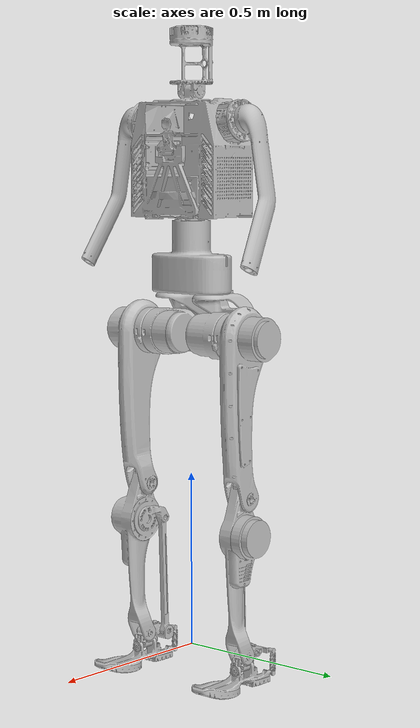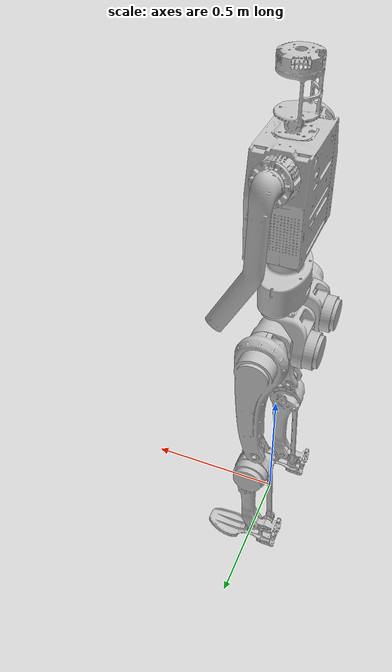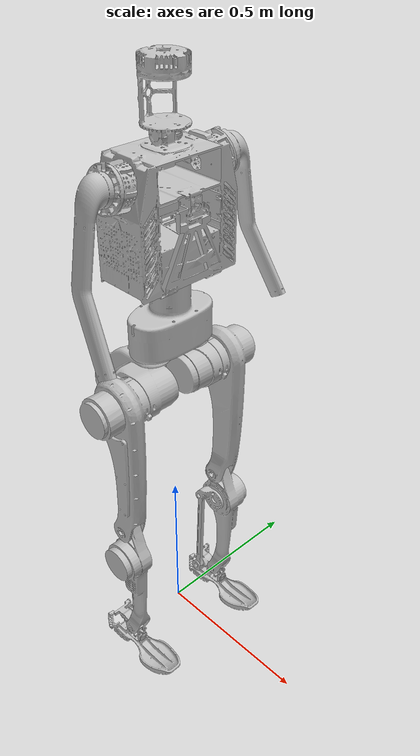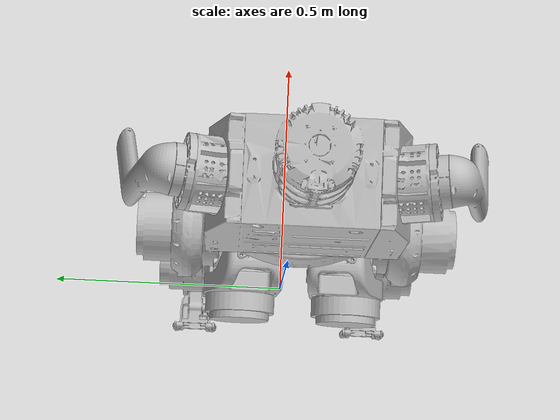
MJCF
<mujoco model="ultra_game_yaw">
  <compiler angle="radian" meshdir="../assets" eulerseq="zyx" autolimits="true"/>

  <default>
    <default class="ultra">
      <default class="visual">
        <geom group="2" type="mesh" density="0" material="body" contype="0" conaffinity="0"/>
      </default>
      <default class="collision">
        <geom group="3" rgba=".2 .6 .2 .3" type="cylinder" contype="1" conaffinity="1" condim="1"/>
        <default class="foot">
          <geom type="capsule" size="0.01" condim="3" friction="0.6 0.5 0.005" priority="1"/>
        </default>
      </default>
      <site group="5" rgba="1 0 0 1"/>
    </default>
  </default>

  <asset>
    <material name="body" rgba="0.752941 0.752941 0.752941 1"/>

    <mesh name="ankle_pitch_l_link" file="ankle_pitch_l_link.STL"/>
    <mesh name="ankle_pitch_r_link" file="ankle_pitch_r_link.STL"/>
    <mesh name="ankle_roll_l_link" file="ankle_roll_l_link.STL"/>
    <mesh name="ankle_roll_r_link" file="ankle_roll_r_link.STL"/>
    <mesh name="base_link" file="base_link.STL"/>
    <mesh name="hip_pitch_l_link" file="hip_pitch_l_link.STL"/>
    <mesh name="hip_pitch_r_link" file="hip_pitch_r_link.STL"/>
    <mesh name="hip_roll_l_link" file="hip_roll_l_link.STL"/>
    <mesh name="hip_roll_r_link" file="hip_roll_r_link.STL"/>
    <mesh name="hip_yaw_l_link" file="hip_yaw_l_link.STL"/>
    <mesh name="hip_yaw_r_link" file="hip_yaw_r_link.STL"/>
    <mesh name="knee_pitch_l_link" file="knee_pitch_l_link.STL"/>
    <mesh name="knee_pitch_r_link" file="knee_pitch_r_link.STL"/>
    <mesh name="shoulder_pitch_l_link" file="shoulder_pitch_l_link.STL"/>
    <mesh name="shoulder_pitch_r_link" file="shoulder_pitch_r_link.STL"/>
    <mesh name="waist_yaw_link" file="waist_yaw_link.STL"/>
  </asset>

  <worldbody>
    <body name="base_link" pos="0 0 1.23" childclass="ultra">
      <freejoint name="floating_base_joint"/>
      <site name="imu_in_base" size="0.01" pos="0 0 0"/>
      <inertial pos="-0.00105 0 -0.13823" mass="6.30030"
                fullinertia="0.05024 0.03127 0.03303 0 -0.00023 0"/>
      <geom class="visual" mesh="base_link"/>
      <geom name="base_collision" class="collision" type="sphere" size="0.05" pos="0 0 -0.08"/>

      <!-- Left leg -->
      <body name="hip_yaw_l_link" pos="0 0.07 -0.2135">
        <inertial pos="-0.10593 0.01716 -0.0943" quat="0.931073 0.062054 0.301882 -0.195243"
                  mass="4.17605" diaginertia="0.0172795 0.0167561 0.00993442"/>
        <joint name="hip_yaw_l_joint" axis="0 0 1" range="-0.436332 0.436332"
               actuatorfrcrange="-250 250" armature="0.048865"/>
        <geom class="visual" mesh="hip_yaw_l_link"/>
        <body name="hip_roll_l_link" pos="-0.0815 0.024 -0.115">
          <inertial pos="0.07397 -0.01706 0.00017" quat="0.580819 0.575652 0.401057 0.412829"
                    mass="4.09037" diaginertia="0.0131236 0.0118403 0.0101961"/>
          <joint name="hip_roll_l_joint" axis="1 0 0" range="-0.349066 0.523599"
                 actuatorfrcrange="-657 657" armature="0.40318"/>
          <geom class="visual" mesh="hip_roll_l_link"/>
          <body name="hip_pitch_l_link" pos="0.0815 0.024 0">
            <inertial pos="0.00427 0.08854 -0.07756" quat="0.972821 -0.0351176 -0.0279091 0.227174"
                      mass="8.24544" diaginertia="0.170371 0.168966 0.0227434"/>
            <joint name="hip_pitch_l_joint" axis="0 1 0" range="-2.79253 2.0944"
                   actuatorfrcrange="-657 657" armature="0.40318"/>
            <geom class="visual" mesh="hip_pitch_l_link"/>
            <geom name="hip_pitch_l_collision" class="collision" type="capsule" size="0.06 0.04" pos="0 0.029 -0.225"/>
            <body name="knee_pitch_l_link" pos="0 0.0705 -0.45">
              <inertial pos="0.010531 0.010036 -0.160398" quat="0.466522 -0.00304073 0.0430458 0.883456"
                        mass="5.23089" diaginertia="0.0802343 0.0773968 0.0115898"/>
              <joint name="knee_pitch_l_joint" axis="0 1 0" range="-0.0872665 2.44346"
                     actuatorfrcrange="-657 657" armature="0.40318"/>
              <geom class="visual" mesh="knee_pitch_l_link"/>
              <geom name="knee_pitch_l_collision" class="collision" type="capsule" size="0.05 0.05" pos="0 0 -0.225"/>
              <body name="ankle_pitch_l_link" pos="0 -0.001 -0.45">
                <inertial pos="-0.0353952115111583 -0.00721174514813097 -0.0144654405563271"
                          mass="0.370437028754298"
                          fullinertia="0.000171921785062328 0.000339371100157231 0.000365894545829481 5.06502702789859E-05 -5.30833341354056E-05 -1.03684561406436E-05"/>
                <joint name="ankle_pitch_l_joint" axis="0 1 0" range="-1.22173 1.0472"
                       actuatorfrcrange="-400 400" armature="0.21448"/>
                <geom class="visual" mesh="ankle_pitch_l_link"/>
                <body name="ankle_roll_l_link" pos="0 0 -0.0395">
                  <inertial pos="0.040541602811062 -2.41864545341697E-06 -0.0359071234506905"
                            mass="0.572011598988568"
                            fullinertia="0.000365351357449998 0.00240050776972967 0.00263572202351186 1.6293361900705E-07 1.45648999866414E-05 -2.6347497611668E-08"/>
                      <joint name="ankle_roll_l_joint" axis="1 0 0" range="-0.174533 0.174533"
                        stiffness="20" damping="0.5"/>
                  <geom class="visual" mesh="ankle_roll_l_link"/>
                  <!-- Heel: 3 short capsules on the flat heel pad (z=-0.055). -->
                  <geom name="left_foot1_collision" class="foot" fromto="-0.088 -0.025 -0.045 -0.022 -0.025 -0.045"/>
                  <geom name="left_foot2_collision" class="foot" fromto="-0.088 0.000 -0.045 -0.022 0.000 -0.045"/>
                  <geom name="left_foot3_collision" class="foot" fromto="-0.088 0.025 -0.045 -0.022 0.025 -0.045"/>
                  <!-- Arch (x~0.0..0.05) intentionally bare: the sole is lifted
                       there, so no collision -> foot rocks on heel + forefoot. -->
                  <!-- Forefoot: 15 spheres on the convex-hull sole, rows
                       widening at the ball and rising along the toe-spring. -->
                  <geom name="left_foot4_collision" class="foot" type="sphere" size="0.013" pos="0.060 -0.034 -0.0416"/>
                  <geom name="left_foot5_collision" class="foot" type="sphere" size="0.013" pos="0.060 0.000 -0.0419"/>
                  <geom name="left_foot6_collision" class="foot" type="sphere" size="0.013" pos="0.060 0.034 -0.0416"/>
                  <geom name="left_foot7_collision" class="foot" type="sphere" size="0.013" pos="0.082 -0.039 -0.0419"/>
                  <geom name="left_foot8_collision" class="foot" type="sphere" size="0.013" pos="0.082 0.000 -0.0419"/>
                  <geom name="left_foot9_collision" class="foot" type="sphere" size="0.013" pos="0.082 0.039 -0.0419"/>
                  <geom name="left_foot10_collision" class="foot" type="sphere" size="0.013" pos="0.104 -0.039 -0.0411"/>
                  <geom name="left_foot11_collision" class="foot" type="sphere" size="0.013" pos="0.104 0.000 -0.0411"/>
                  <geom name="left_foot12_collision" class="foot" type="sphere" size="0.013" pos="0.104 0.039 -0.0411"/>
                  <geom name="left_foot13_collision" class="foot" type="sphere" size="0.013" pos="0.128 -0.037 -0.0381"/>
                  <geom name="left_foot14_collision" class="foot" type="sphere" size="0.013" pos="0.128 0.000 -0.0326"/>
                  <geom name="left_foot15_collision" class="foot" type="sphere" size="0.013" pos="0.128 0.037 -0.0381"/>
                  <geom name="left_foot16_collision" class="foot" type="sphere" size="0.013" pos="0.152 -0.031 -0.0319"/>
                  <geom name="left_foot17_collision" class="foot" type="sphere" size="0.013" pos="0.152 0.031 -0.0319"/>
                  <geom name="left_foot18_collision" class="foot" type="sphere" size="0.013" pos="0.175 0.000 -0.0213"/>
                  <site name="left_foot" size="0.01" pos="0 0 -0.04"/>
                </body>
              </body>
            </body>
          </body>
        </body>
      </body>

      <!-- Right leg -->
      <body name="hip_yaw_r_link" pos="0 -0.07 -0.2135">
        <inertial pos="-0.10593 -0.01716 -0.0943" quat="0.931073 -0.062054 0.301882 0.195243"
                  mass="4.17605" diaginertia="0.0172795 0.0167561 0.00993442"/>
        <joint name="hip_yaw_r_joint" axis="0 0 1" range="-0.436332 0.436332"
               actuatorfrcrange="-250 250" armature="0.048865"/>
        <geom class="visual" mesh="hip_yaw_r_link"/>
        <body name="hip_roll_r_link" pos="-0.0815 -0.024 -0.115">
          <inertial pos="0.07397 0.01706 0.00017" quat="0.412829 0.401057 0.575652 0.580819"
                    mass="4.09037" diaginertia="0.0131236 0.0118403 0.0101961"/>
          <joint name="hip_roll_r_joint" axis="1 0 0" range="-0.523599 0.349066"
                 actuatorfrcrange="-657 657" armature="0.40318"/>
          <geom class="visual" mesh="hip_roll_r_link"/>
          <body name="hip_pitch_r_link" pos="0.0815 -0.024 0">
            <inertial pos="0.00427 -0.08854 -0.07756" quat="0.972821 0.0351176 -0.0279091 -0.227174"
                      mass="8.24544" diaginertia="0.170371 0.168966 0.0227434"/>
            <joint name="hip_pitch_r_joint" axis="0 1 0" range="-2.79253 2.0944"
                   actuatorfrcrange="-657 657" armature="0.40318"/>
            <geom class="visual" mesh="hip_pitch_r_link"/>
            <geom name="hip_pitch_r_collision" class="collision" type="capsule" size="0.06 0.04" pos="0 -0.029 -0.225"/>
            <body name="knee_pitch_r_link" pos="0 -0.0705 -0.45">
              <inertial pos="0.010531 -0.010036 -0.160398" quat="0.883456 0.0430458 -0.00304073 0.466522"
                        mass="5.23089" diaginertia="0.0802343 0.0773968 0.0115898"/>
              <joint name="knee_pitch_r_joint" axis="0 1 0" range="-0.0872665 2.44346"
                     actuatorfrcrange="-657 657" armature="0.40318"/>
              <geom class="visual" mesh="knee_pitch_r_link"/>
              <geom name="knee_pitch_r_collision" class="collision" type="capsule" size="0.05 0.05" pos="0 0 -0.225"/>
              <body name="ankle_pitch_r_link" pos="0 0.001 -0.45">
                <inertial pos="-0.035395223600385 0.0072117487942481 -0.0144654367946995"
                          mass="0.370436972802957"
                          fullinertia="0.000171921733032789 0.000339371078352238 0.000365894536683202 -5.0650254941659E-05 -5.30832657645268E-05 1.03684461655452E-05"/>
                <joint name="ankle_pitch_r_joint" axis="0 1 0" range="-1.22173 1.0472"
                       actuatorfrcrange="-400 400" armature="0.21448"/>
                <geom class="visual" mesh="ankle_pitch_r_link"/>
                <body name="ankle_roll_r_link" pos="0 0 -0.0395">
                  <inertial pos="0.0405387277252762 8.88483010330621E-06 -0.0359086178915233"
                            mass="0.571980263556214"
                            fullinertia="0.000365360720190839 0.00240064526947109 0.00263586062376372 -1.38236787239282E-07 1.4592823453055E-05 2.88746913876523E-09"/>
                      <joint name="ankle_roll_r_joint" axis="1 0 0" range="-0.174533 0.174533"
                        stiffness="20" damping="0.5"/>
                  <geom class="visual" mesh="ankle_roll_r_link"/>
                  <!-- Mirror of left (foot symmetric about y=0). -->
                  <geom name="right_foot1_collision" class="foot" fromto="-0.088 -0.025 -0.045 -0.022 -0.025 -0.045"/>
                  <geom name="right_foot2_collision" class="foot" fromto="-0.088 0.000 -0.045 -0.022 0.000 -0.045"/>
                  <geom name="right_foot3_collision" class="foot" fromto="-0.088 0.025 -0.045 -0.022 0.025 -0.045"/>
                  <geom name="right_foot4_collision" class="foot" type="sphere" size="0.013" pos="0.060 -0.034 -0.0416"/>
                  <geom name="right_foot5_collision" class="foot" type="sphere" size="0.013" pos="0.060 0.000 -0.0419"/>
                  <geom name="right_foot6_collision" class="foot" type="sphere" size="0.013" pos="0.060 0.034 -0.0416"/>
                  <geom name="right_foot7_collision" class="foot" type="sphere" size="0.013" pos="0.082 -0.039 -0.0419"/>
                  <geom name="right_foot8_collision" class="foot" type="sphere" size="0.013" pos="0.082 0.000 -0.0419"/>
                  <geom name="right_foot9_collision" class="foot" type="sphere" size="0.013" pos="0.082 0.039 -0.0419"/>
                  <geom name="right_foot10_collision" class="foot" type="sphere" size="0.013" pos="0.104 -0.039 -0.0411"/>
                  <geom name="right_foot11_collision" class="foot" type="sphere" size="0.013" pos="0.104 0.000 -0.0411"/>
                  <geom name="right_foot12_collision" class="foot" type="sphere" size="0.013" pos="0.104 0.039 -0.0411"/>
                  <geom name="right_foot13_collision" class="foot" type="sphere" size="0.013" pos="0.128 -0.037 -0.0381"/>
                  <geom name="right_foot14_collision" class="foot" type="sphere" size="0.013" pos="0.128 0.000 -0.0326"/>
                  <geom name="right_foot15_collision" class="foot" type="sphere" size="0.013" pos="0.128 0.037 -0.0381"/>
                  <geom name="right_foot16_collision" class="foot" type="sphere" size="0.013" pos="0.152 -0.031 -0.0319"/>
                  <geom name="right_foot17_collision" class="foot" type="sphere" size="0.013" pos="0.152 0.031 -0.0319"/>
                  <geom name="right_foot18_collision" class="foot" type="sphere" size="0.013" pos="0.175 0.000 -0.0213"/>
                  <site name="right_foot" size="0.01" pos="0 0 -0.04"/>
                </body>
              </body>
            </body>
          </body>
        </body>
      </body>

      <!-- Waist + arms -->
      <body name="waist_yaw_link">
        <inertial pos="0.00156 -0.001173 0.242753" quat="0.999785 -0.000564997 -0.0202735 0.00438609"
                  mass="15.6961" diaginertia="0.390472 0.291932 0.181409"/>
        <joint name="waist_yaw_joint" axis="0 0 1" range="-1.5708 1.5708"
               actuatorfrcrange="-250 250" armature="0.048865"/>
        <geom class="visual" mesh="waist_yaw_link"/>
        <geom name="waist_collision" class="collision" type="sphere" size="0.1" pos="0 0 0.16"/>
        <body name="shoulder_pitch_l_link" pos="0.00052293 0.1866 0.26789"
              quat="0.995247 0.0870717 0.00380173 -0.0434533">
          <inertial pos="0.070697 0.049271 -0.277004" mass="1.895842"
                    fullinertia="0.066849 0.072121 0.007156 -0.001084 0.018180 0.004462"/>
          <joint name="shoulder_pitch_l_joint" axis="0 1 0" range="-2.96706 2.96706"
                 actuatorfrcrange="-140 140" armature="0.041125"/>
          <geom class="visual" mesh="shoulder_pitch_l_link"/>
        </body>
        <body name="shoulder_pitch_r_link" pos="0.00052293 -0.1866 0.26789"
              quat="0.995247 -0.0870717 0.00380173 0.0434533">
          <inertial pos="0.070697 -0.049271 -0.277004" mass="1.895842"
                    fullinertia="0.066849 0.072121 0.007156 0.001084 0.018180 -0.004462"/>
          <joint name="shoulder_pitch_r_joint" axis="0 1 0" range="-2.96706 2.96706"
                 actuatorfrcrange="-140 140" armature="0.041125"/>
          <geom class="visual" mesh="shoulder_pitch_r_link"/>
        </body>
      </body>
    </body>
  </worldbody>

  <contact>
    <!-- Adjacent bodies: skip self-collision to keep solver happy. -->
    <exclude body1="base_link" body2="waist_yaw_link"/>
    <exclude body1="base_link" body2="hip_yaw_l_link"/>
    <exclude body1="base_link" body2="hip_yaw_r_link"/>
    <exclude body1="hip_yaw_l_link" body2="hip_roll_l_link"/>
    <exclude body1="hip_roll_l_link" body2="hip_pitch_l_link"/>
    <exclude body1="hip_pitch_l_link" body2="knee_pitch_l_link"/>
    <exclude body1="knee_pitch_l_link" body2="ankle_pitch_l_link"/>
    <exclude body1="ankle_pitch_l_link" body2="ankle_roll_l_link"/>
    <exclude body1="hip_yaw_r_link" body2="hip_roll_r_link"/>
    <exclude body1="hip_roll_r_link" body2="hip_pitch_r_link"/>
    <exclude body1="hip_pitch_r_link" body2="knee_pitch_r_link"/>
    <exclude body1="knee_pitch_r_link" body2="ankle_pitch_r_link"/>
    <exclude body1="ankle_pitch_r_link" body2="ankle_roll_r_link"/>
    <exclude body1="waist_yaw_link" body2="shoulder_pitch_l_link"/>
    <exclude body1="waist_yaw_link" body2="shoulder_pitch_r_link"/>
  </contact>

  <sensor>
    <gyro name="imu_ang_vel" site="imu_in_base"/>
    <velocimeter name="imu_lin_vel" site="imu_in_base"/>
    <accelerometer name="imu_lin_acc" site="imu_in_base"/>
    <framezaxis name="imu_upvector" objtype="body" objname="world" reftype="site" refname="imu_in_base"/>
    <subtreeangmom name="root_angmom" body="base_link"/>
  </sensor>
</mujoco>
